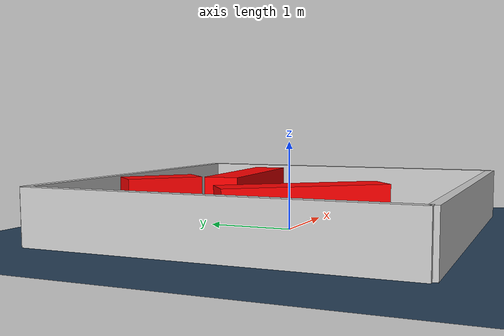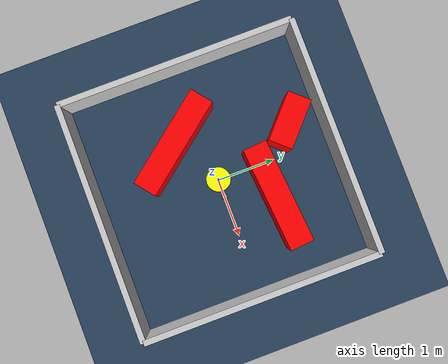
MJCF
<?xml version="1.0" ?>
<mujoco model="generated_environment">
  <option timestep="0.01" integrator="RK4" cone="elliptic"/>
  <default>
    <geom density="1"/>
  </default>
  <asset>
    <texture builtin="gradient" height="3072" rgb1="0.3 0.5 0.7" rgb2="0 0 0" type="skybox" width="512"/>
    <texture builtin="checker" height="300" mark="edge" markrgb="0.8 0.8 0.8" name="groundplane" rgb1="0.2 0.3 0.4" rgb2="0.1 0.2 0.3" type="2d" width="300"/>
    <material name="groundplane" reflectance="0.2" texrepeat="5 5" texture="groundplane" texuniform="true"/>
    <material name="robot" rgba="0.0 1.0 0.0 1"/>
  </asset>
  <worldbody>
    <light dir="0 0 -1" directional="true" pos="0 0 1.5"/>
    <geom condim="4" friction="1.0 0.005 0.001" material="groundplane" name="floor" size="0 0 0.05" type="plane"/>
    <body name="walls">
      <geom name="wall_1" condim="4" pos="-2.0 0.0 0.3" rgba="0.800000011920929 0.800000011920929 0.800000011920929 1.0" size="0.05 2.0 0.3" type="box"/>
      <geom name="wall_2" condim="4" pos="2.0 0.0 0.3" rgba="0.800000011920929 0.800000011920929 0.800000011920929 1.0" size="0.05 2.0 0.3" type="box"/>
      <geom name="wall_3" condim="4" pos="0.0 -2.0 0.3" rgba="0.800000011920929 0.800000011920929 0.800000011920929 1.0" size="2.0 0.05 0.3" type="box"/>
      <geom name="wall_4" condim="4" pos="0.0 2.0 0.3" rgba="0.800000011920929 0.800000011920929 0.800000011920929 1.0" size="2.0 0.05 0.3" type="box"/>
    </body>
    <body name="robot">
      <joint name="joint_x" type="slide" pos="0 0 0" axis="1 0 0"/>
      <joint name="joint_y" type="slide" pos="0 0 0" axis="0 1 0"/>
      <geom name="robot" type="sphere" pos="0.3 0.0 0.2" size="0.05" mass="5." friction="1.0 0.005 0.0001" condim="4" rgba="0.5 0.5 0.5 1.0"/>
      <site name="sensor_ball"/>
    </body>
    <body name="obstacle_movable_1">
      <geom name="obstacle_movable_1" condim="4" pos="0.0 0.0 0.2" euler="0 0 0.0" friction="1.0 0.005 0.001" rgba="1.0 1.0 0.0 1.0" size="0.2 0.2 0.0" type="cylinder" mass="0.1"/>
      <joint type="free"/>
    </body>
    <body name="obstacle_2_static">
      <geom name="obstacle_2_static" condim="4" pos="-0.7960860360920288 -0.469496431320892 0.3" euler="0 0 308.49362806807886" friction="1.0 0.005 0.001" rgba="1 0 0 1" size="0.8740882741680867 0.2 0.3" type="box"/>
    </body>
    <body name="obstacle_3_static">
      <geom name="obstacle_3_static" condim="4" pos="0.574312833054194 0.7975777728003279 0.3" euler="0 0 4.9854783426428595" friction="1.0 0.005 0.001" rgba="1 0 0 1" size="0.8734623492078313 0.2 0.3" type="box"/>
    </body>
    <body name="obstacle_4_static">
      <geom name="obstacle_4_static" condim="4" pos="-0.4773351727296038 1.3970018008885339 0.3" euler="0 0 317.85644972766767" friction="1.0 0.005 0.001" rgba="1 0 0 1" size="0.422696747467129 0.2 0.3" type="box"/>
    </body>
  </worldbody>
  <actuator>
    <motor name="actuator_x" joint="joint_x" gear="1" ctrlrange="-1 1"/>
    <motor name="actuator_y" joint="joint_y" gear="1" ctrlrange="-1 1"/>
  </actuator>
</mujoco>
